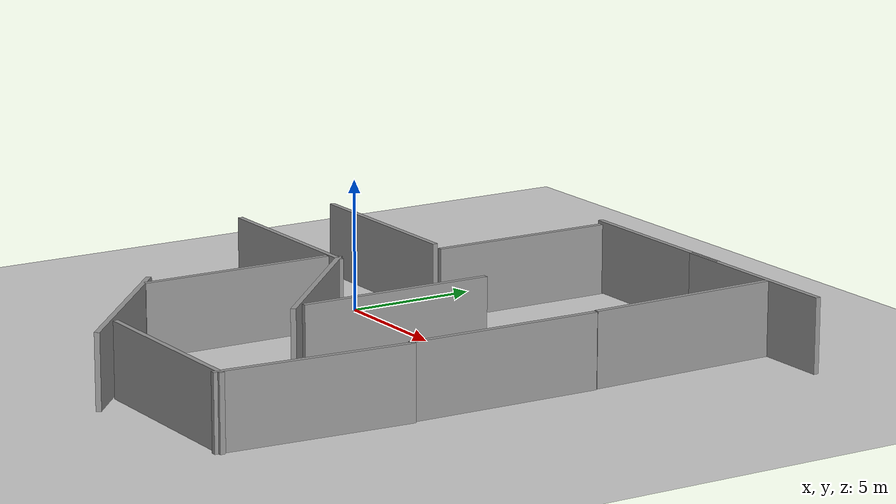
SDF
<sdf version="1.6">
 <world name="default">
  <physics name="default_physics" default="0" type="ode">
   <ode>
    <solver>
     <type>quick</type>
     <iters>100</iters>
     <sor>1</sor>
     <use_dynamic_moi_rescaling>0</use_dynamic_moi_rescaling>
    </solver>
    <constraints>
     <cfm>0</cfm>
     <erp>0.2</erp>
     <contact_max_correcting_vel>0.1</contact_max_correcting_vel>
     <contact_surface_layer>0</contact_surface_layer>
    </constraints>
   </ode>
   <real_time_update_rate>-1</real_time_update_rate>
   <max_step_size>0.001</max_step_size>
   <real_time_factor>1</real_time_factor>
  </physics>
  <gravity>0 0 -9.8</gravity>
  <light name="sun" type="directional">
   <pose>0 0 10 0 -0 0</pose>
   <diffuse>0.8 0.8 0.8 1</diffuse>
   <specular>0.2 0.2 0.2 1</specular>
   <attenuation>
    <range>1000</range>
    <constant>0.9</constant>
    <linear>0.01</linear>
    <quadratic>0.001</quadratic>
   </attenuation>
   <direction>-0.5 0.1 -0.9</direction>
  </light>
  <model name="ground_plane">
   <static>1</static>
   <link name="link">
    <collision name="collision">
     <geometry><plane><normal>0 0 1</normal><size>100 100</size></plane></geometry>
     <surface>
      <contact><collide_bitmask>65535</collide_bitmask></contact>
      <friction><ode><mu>100</mu><mu2>50</mu2></ode></friction>
     </surface>
    </collision>
    <visual name="visual">
     <cast_shadows>0</cast_shadows>
     <geometry><plane><normal>0 0 1</normal><size>100 100</size></plane></geometry>
     <material>
      <script><uri>file://media/materials/scripts/gazebo.material</uri><name>Gazebo/Grey</name></script>
     </material>
    </visual>
   </link>
  </model>
  <plugin name="map" filename="libStaticMapPlugin.so">
   <center>-35.363261 149.165230</center>
   <world_size>300</world_size>
   <map_type>satellite</map_type>
   <api_key>YOU_API_KEY</api_key>
   <use_cache>1</use_cache>
   <pose>0 0 0.2 0 0 -1.5708</pose>
  </plugin>
  <magnetic_field>6e-06 2.3e-05 -4.2e-05</magnetic_field>
  <atmosphere type="adiabatic"/>
  <scene><ambient>0.4 0.4 0.4 1</ambient><background>0.7 0.7 0.7 1</background><shadows>1</shadows></scene>
  <audio><device>default</device></audio>
  <spherical_coordinates>
   <surface_model>EARTH_WGS84</surface_model>
   <latitude_deg>0</latitude_deg>
   <longitude_deg>0</longitude_deg>
   <elevation>0</elevation>
   <heading_deg>0</heading_deg>
  </spherical_coordinates>
  <model name="grey_wall">
   <static>1</static>
   <link name="link">
    <pose>0 0 1.4 0 -0 0</pose>
    <collision name="collision"><geometry><box><size>7.5 0.2 2.8</size></box></geometry></collision>
    <visual name="visual">
     <cast_shadows>0</cast_shadows>
     <geometry><box><size>7.5 0.2 2.8</size></box></geometry>
     <material>
      <script>
       <uri>model://grey_wall/materials/scripts</uri>
       <uri>model://grey_wall/materials/textures</uri>
       <name>vrc/grey_wall</name>
      </script>
     </material>
    </visual>
   </link>
   <pose>-1.35269 2.05229 0 0 -0 0</pose>
  </model>
  <model name="grey_wall_0">
   <static>1</static>
   <link name="link">
    <pose>0 0 1.4 0 -0 0</pose>
    <collision name="collision"><geometry><box><size>7.5 0.2 2.8</size></box></geometry></collision>
    <visual name="visual">
     <cast_shadows>0</cast_shadows>
     <geometry><box><size>7.5 0.2 2.8</size></box></geometry>
     <material>
      <script>
       <uri>model://grey_wall/materials/scripts</uri>
       <uri>model://grey_wall/materials/textures</uri>
       <name>vrc/grey_wall</name>
      </script>
     </material>
    </visual>
   </link>
   <pose>-1.28933 -2.0624 0 0 -0 0</pose>
  </model>
  <model name="grey_wall_1">
   <static>1</static>
   <link name="link">
    <pose>0 0 1.4 0 -0 0</pose>
    <collision name="collision"><geometry><box><size>7.5 0.2 2.8</size></box></geometry></collision>
    <visual name="visual">
     <cast_shadows>0</cast_shadows>
     <geometry><box><size>7.5 0.2 2.8</size></box></geometry>
     <material>
      <script>
       <uri>model://grey_wall/materials/scripts</uri>
       <uri>model://grey_wall/materials/textures</uri>
       <name>vrc/grey_wall</name>
      </script>
     </material>
    </visual>
   </link>
   <pose>2.74375 5.80207 -0.117047 0 -0 1.55917</pose>
  </model>
  <model name="grey_wall_2">
   <static>1</static>
   <link name="link">
    <pose>0 0 1.4 0 -0 0</pose>
    <collision name="collision"><geometry><box><size>7.5 0.2 2.8</size></box></geometry></collision>
    <visual name="visual">
     <cast_shadows>0</cast_shadows>
     <geometry><box><size>7.5 0.2 2.8</size></box></geometry>
     <material>
      <script>
       <uri>model://grey_wall/materials/scripts</uri>
       <uri>model://grey_wall/materials/textures</uri>
       <name>vrc/grey_wall</name>
      </script>
     </material>
    </visual>
   </link>
   <pose>6.33863 9.36376 0 0 -0 0</pose>
  </model>
  <model name="grey_wall_3">
   <static>1</static>
   <link name="link">
    <pose>0 0 1.4 0 -0 0</pose>
    <collision name="collision"><geometry><box><size>7.5 0.2 2.8</size></box></geometry></collision>
    <visual name="visual">
     <cast_shadows>0</cast_shadows>
     <geometry><box><size>7.5 0.2 2.8</size></box></geometry>
     <material>
      <script>
       <uri>model://grey_wall/materials/scripts</uri>
       <uri>model://grey_wall/materials/textures</uri>
       <name>vrc/grey_wall</name>
      </script>
     </material>
    </visual>
   </link>
   <pose>4.77734 -4.44176 0 0 0 -0.754378</pose>
  </model>
  <model name="grey_wall_4">
   <static>1</static>
   <link name="link">
    <pose>0 0 1.4 0 -0 0</pose>
    <collision name="collision"><geometry><box><size>7.5 0.2 2.8</size></box></geometry></collision>
    <visual name="visual">
     <cast_shadows>0</cast_shadows>
     <geometry><box><size>7.5 0.2 2.8</size></box></geometry>
     <material>
      <script>
       <uri>model://grey_wall/materials/scripts</uri>
       <uri>model://grey_wall/materials/textures</uri>
       <name>vrc/grey_wall</name>
      </script>
     </material>
    </visual>
   </link>
   <pose>7.2427 -2.65814 0 0 0 -1.58557</pose>
  </model>
  <model name="grey_wall_5">
   <static>1</static>
   <link name="link">
    <pose>0 0 1.4 0 -0 0</pose>
    <collision name="collision"><geometry><box><size>7.5 0.2 2.8</size></box></geometry></collision>
    <visual name="visual">
     <cast_shadows>0</cast_shadows>
     <geometry><box><size>7.5 0.2 2.8</size></box></geometry>
     <material>
      <script>
       <uri>model://grey_wall/materials/scripts</uri>
       <uri>model://grey_wall/materials/textures</uri>
       <name>vrc/grey_wall</name>
      </script>
     </material>
    </visual>
   </link>
   <pose>12.2349 9.34706 0 0 -0 0</pose>
  </model>
  <model name="grey_wall_6">
   <static>1</static>
   <link name="link">
    <pose>0 0 1.4 0 -0 0</pose>
    <collision name="collision"><geometry><box><size>7.5 0.2 2.8</size></box></geometry></collision>
    <visual name="visual">
     <cast_shadows>0</cast_shadows>
     <geometry><box><size>7.5 0.2 2.8</size></box></geometry>
     <material>
      <script>
       <uri>model://grey_wall/materials/scripts</uri>
       <uri>model://grey_wall/materials/textures</uri>
       <name>vrc/grey_wall</name>
      </script>
     </material>
    </visual>
   </link>
   <pose>13.2329 5.48846 0 0 -0 1.5908</pose>
  </model>
  <model name="grey_wall_7">
   <static>1</static>
   <link name="link">
    <pose>0 0 1.4 0 -0 0</pose>
    <collision name="collision"><geometry><box><size>7.5 0.2 2.8</size></box></geometry></collision>
    <visual name="visual">
     <cast_shadows>0</cast_shadows>
     <geometry><box><size>7.5 0.2 2.8</size></box></geometry>
     <material>
      <script>
       <uri>model://grey_wall/materials/scripts</uri>
       <uri>model://grey_wall/materials/textures</uri>
       <name>vrc/grey_wall</name>
      </script>
     </material>
    </visual>
   </link>
   <pose>13.2957 -2.06029 0 0 -0 1.55305</pose>
  </model>
  <model name="grey_wall_8">
   <static>1</static>
   <link name="link">
    <pose>0 0 1.4 0 -0 0</pose>
    <collision name="collision"><geometry><box><size>7.5 0.2 2.8</size></box></geometry></collision>
    <visual name="visual">
     <cast_shadows>0</cast_shadows>
     <geometry><box><size>7.5 0.2 2.8</size></box></geometry>
     <material>
      <script>
       <uri>model://grey_wall/materials/scripts</uri>
       <uri>model://grey_wall/materials/textures</uri>
       <name>vrc/grey_wall</name>
      </script>
     </material>
    </visual>
   </link>
   <pose>13.0977 -9.41922 0 0 -0 1.50365</pose>
  </model>
  <model name="grey_wall_9">
   <static>1</static>
   <link name="link">
    <pose>0 0 1.4 0 -0 0</pose>
    <collision name="collision"><geometry><box><size>7.5 0.2 2.8</size></box></geometry></collision>
    <visual name="visual">
     <cast_shadows>0</cast_shadows>
     <geometry><box><size>7.5 0.2 2.8</size></box></geometry>
     <material>
      <script>
       <uri>model://grey_wall/materials/scripts</uri>
       <uri>model://grey_wall/materials/textures</uri>
       <name>vrc/grey_wall</name>
      </script>
     </material>
    </visual>
   </link>
   <pose>9.31457 -12.9165 0 0 -0 0</pose>
  </model>
  <model name="grey_wall_10">
   <static>1</static>
   <link name="link">
    <pose>0 0 1.4 0 -0 0</pose>
    <collision name="collision"><geometry><box><size>7.5 0.2 2.8</size></box></geometry></collision>
    <visual name="visual">
     <cast_shadows>0</cast_shadows>
     <geometry><box><size>7.5 0.2 2.8</size></box></geometry>
     <material>
      <script>
       <uri>model://grey_wall/materials/scripts</uri>
       <uri>model://grey_wall/materials/textures</uri>
       <name>vrc/grey_wall</name>
      </script>
     </material>
    </visual>
   </link>
   <pose>3.79678 -11.6841 0 0 0 -0.7244</pose>
  </model>
  <model name="grey_wall_11">
   <static>1</static>
   <link name="link">
    <pose>0 0 1.4 0 -0 0</pose>
    <collision name="collision"><geometry><box><size>7.5 0.2 2.8</size></box></geometry></collision>
    <visual name="visual">
     <cast_shadows>0</cast_shadows>
     <geometry><box><size>7.5 0.2 2.8</size></box></geometry>
     <material>
      <script>
       <uri>model://grey_wall/materials/scripts</uri>
       <uri>model://grey_wall/materials/textures</uri>
       <name>vrc/grey_wall</name>
      </script>
     </material>
    </visual>
   </link>
   <pose>1.71807 -5.98351 0.002468 0 0 -1.58285</pose>
  </model>
 </world>
</sdf>
